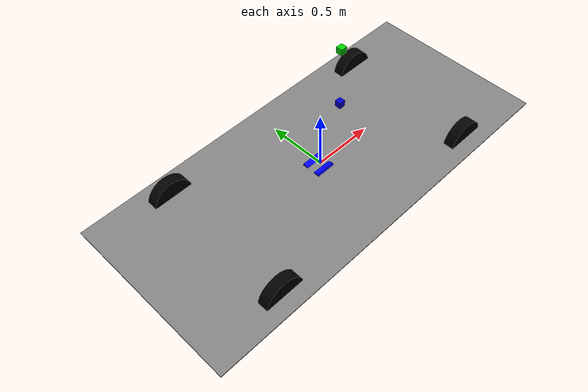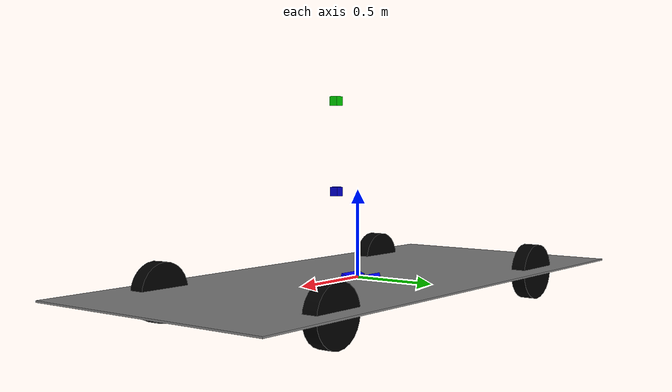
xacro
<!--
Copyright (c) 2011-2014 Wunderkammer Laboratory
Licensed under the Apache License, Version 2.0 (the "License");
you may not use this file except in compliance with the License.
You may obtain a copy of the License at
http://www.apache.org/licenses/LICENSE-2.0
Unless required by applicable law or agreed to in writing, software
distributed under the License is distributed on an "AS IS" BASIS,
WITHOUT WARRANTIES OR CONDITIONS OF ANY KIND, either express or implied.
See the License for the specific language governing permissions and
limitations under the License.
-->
<?xml version="1.0"?>

<!-- MADE CHANGES IN THE DIMENSIONS and MASS
WHEEL MASS IS CORRECT, REST IS NOT -->
<!-- Also added a camera, imu and broke the materials to a different file -->

<robot name="em_3905" xmlns:xacro="http://www.ros.org/wiki/xacro">

  <xacro:include filename="$(find ackermann_vehicle_description)/urdf/colors.xacro" />
  <xacro:include filename="$(find ackermann_vehicle_description)/urdf/sensors.gazebo" />

  <xacro:property name="cameraSize" value="0.05"/>
  <xacro:property name="cameraMass" value="0.1"/>
  <!-- Degree-to-radian conversions -->

  <xacro:property name="degrees_45" value="0.785398163"/>
  <xacro:property name="degrees_90" value="1.57079633"/>

  <!-- chassis_length is measured along the x axis, chassis_width
       along the y axis, and chassis_height along the z axis. -->
  <xacro:property name="chassis_length" value="3.280"/>
  <xacro:property name="chassis_width" value="1.514"/>
  <xacro:property name="chassis_height" value="0.01"/>
  <xacro:property name="chassis_mass" value="2.788"/>

  <xacro:property name="battery_x_offset" value="0.055"/>
  <xacro:property name="battery_dist" value="0.065"/>
  <xacro:property name="battery_comp_depth" value="0.02"/>
  <xacro:property name="battery_comp_angle" value="0.34906585"/>
  <xacro:property name="battery_length" value="0.16"/>
  <xacro:property name="battery_width" value="0.047"/>
  <xacro:property name="battery_height" value="0.024"/>
  <xacro:property name="battery_mass" value="0.5025"/>

  <xacro:property name="hub_dia" value="0.09652"/>
  <xacro:property name="tire_dia" value="0.3305"/>
  <xacro:property name="tire_width" value="0.0889"/>
  <xacro:property name="hex_hub_depth" value="0.01445"/>
  <xacro:property name="wheel_mass" value="8.00"/>

  <xacro:property name="wheelbase" value="1.958"/>
  <xacro:property name="hex_hub_dist" value="1.2365"/>
  <xacro:property name="axle_length" value="0.03"/>
  <xacro:property name="wheel_travel" value="0.084"/>
  <xacro:property name="shock_z_offset" value="0.0655"/>

  <xacro:property name="shock_eff_limit" value="12.5106"/>
  <xacro:property name="shock_vel_limit" value="1000"/>

  <xacro:property name="axle_eff_limit" value="5.12766"/>
  <xacro:property name="axle_vel_limit" value="244.8696"/>

  <!-- These constants are used to simulate a Traxxas 2056 servo operated at
       6 V. servo_stall_torque is measured in N m. servo_no_load_speed is
       measured in rad/s. -->
  <xacro:property name="servo_stall_torque" value="1.5649"/>
  <xacro:property name="servo_no_load_speed" value="4.5530"/>

  <!-- Null inertial element. This is needed to make the model work with
       Gazebo. -->
  <xacro:macro name="null_inertial">
    <inertial>
      <mass value="0.001"/>
      <inertia ixx="0.001" ixy="0" ixz="0" iyy="0.001" iyz="0" izz="0.001"/>
    </inertial>
  </xacro:macro>

  <!-- Inertia of a solid cuboid. Width is measured along the x axis, depth
       along the y axis, and height along the z axis. -->
  <xacro:macro name="solid_cuboid_inertial"
               params="width depth height mass *origin">
    <inertial>
      <xacro:insert_block name="origin"/>
      <mass value="${mass}"/>
      <inertia ixx="${mass * (depth * depth + height * height) / 12}"
               ixy="0" ixz="0"
               iyy="${mass * (width * width + height * height) / 12}"
               iyz="0"
               izz="${mass * (width * width + depth * depth) / 12}"/>
    </inertial>
  </xacro:macro>

  <xacro:macro name="thick_walled_tube_inertial"
               params="inner_rad outer_rad height mass">
    <inertial>
      <mass value="${mass}"/>
      <inertia ixx="${(1 / 12) * mass * (3 * (inner_rad * inner_rad +
                    outer_rad * outer_rad) + height * height)}"
               ixy="0" ixz="0"
               iyy="${(1 / 12) * mass * (3 * (inner_rad * inner_rad +
                    outer_rad * outer_rad) + height * height)}"
               iyz="0"
               izz="${mass * (inner_rad * inner_rad +
                    outer_rad * outer_rad) / 2}"/>
    </inertial>
  </xacro:macro>

  <!-- Battery -->
  <xacro:macro name="battery" params="prefix reflect">
    <joint name="chassis_to_${prefix}_battery" type="fixed">
      <parent link="chassis"/>
      <child link="${prefix}_battery_offset"/>
      <origin xyz="${battery_x_offset - battery_length / 2}
                   ${reflect * battery_dist / 2}
                   0"
              rpy="${reflect * battery_comp_angle} 0 0"/>
    </joint>

    <link name="${prefix}_battery_offset">
      <xacro:null_inertial/>
    </link>

    <joint name="offset_to_${prefix}_battery" type="fixed">
      <parent link="${prefix}_battery_offset"/>
      <child link="${prefix}_battery"/>
      <origin xyz="0
                   ${reflect * battery_width / 2}
                   ${(battery_height / 2) - battery_comp_depth}"/>
    </joint>

    <link name="${prefix}_battery">
      <visual>
        <geometry>
          <box size="${battery_length} ${battery_width} ${battery_height}"/>
        </geometry>
        <material name="battery_mat"/>
      </visual>

      <collision>
        <geometry>
          <box size="${battery_length} ${battery_width} ${battery_height}"/>
        </geometry>
      </collision>

      <xacro:solid_cuboid_inertial
         width="${battery_length}" depth="${battery_width}"
         height="${battery_height}" mass="${battery_mass}">
        <origin/>
      </xacro:solid_cuboid_inertial>
    </link>

    <gazebo reference="${prefix}_battery">
      <material>Gazebo/Blue</material>
    </gazebo>
  </xacro:macro>

  <!-- Shock absorber -->
  <xacro:macro name="shock"
               params="lr_prefix fr_prefix lr_reflect fr_reflect child">
    <joint name="${lr_prefix}_${fr_prefix}_shock" type="prismatic">
      <parent link="chassis"/>
      <child link="${child}"/>

      <origin xyz="${fr_reflect * wheelbase / 2}
                   ${lr_reflect * ((hex_hub_dist / 2) - axle_length)}
                   ${(wheel_travel / 2) - shock_z_offset}"/>
      <axis xyz="0 0 -1"/>
      <limit lower="${-wheel_travel / 2}" upper="${wheel_travel / 2}"
             effort="${shock_eff_limit}" velocity="${shock_vel_limit}"/>
    </joint>
    <transmission name="${lr_prefix}_${fr_prefix}_shock_trans">
      <type>transmission_interface/SimpleTransmission</type>
      <joint name="${lr_prefix}_${fr_prefix}_shock">
        <hardwareInterface>EffortJointInterface</hardwareInterface>
      </joint>
      <actuator name="${lr_prefix}_${fr_prefix}_shock_act">
        <!-- This hardwareInterface element exists for compatibility
             with ROS Hydro. -->
        <hardwareInterface>EffortJointInterface</hardwareInterface>
        <mechanicalReduction>1</mechanicalReduction>
      </actuator>
    </transmission>
  </xacro:macro>

  <!-- The "wheel" macro defines an axle carrier, axle, and wheel. -->
  <xacro:macro name="wheel" params="lr_prefix fr_prefix lr_reflect">
    <link name="${lr_prefix}_${fr_prefix}_axle_carrier">
      <xacro:null_inertial/>
    </link>

    <!-- The left and right axles have the same axis so that identical
         rotation values cause the wheels to rotate in the same direction. -->
    <joint name="${lr_prefix}_${fr_prefix}_axle" type="continuous">
      <parent link="${lr_prefix}_${fr_prefix}_axle_carrier"/>
      <child link="${lr_prefix}_${fr_prefix}_wheel"/>
      <origin rpy="${degrees_90} 0 0"/>
      <axis xyz="0 0 -1"/>
      <limit effort="${axle_eff_limit}" velocity="${axle_vel_limit}"/>
    </joint>
    <transmission name="${lr_prefix}_${fr_prefix}_axle_trans">
      <type>transmission_interface/SimpleTransmission</type>
      <joint name="${lr_prefix}_${fr_prefix}_axle">
        <hardwareInterface>EffortJointInterface</hardwareInterface>
      </joint>
      <actuator name="${lr_prefix}_${fr_prefix}_axle_act">
        <!-- This hardwareInterface element exists for compatibility
             with ROS Hydro. -->
        <hardwareInterface>EffortJointInterface</hardwareInterface>
        <mechanicalReduction>1</mechanicalReduction>
      </actuator>
    </transmission>

    <link name="${lr_prefix}_${fr_prefix}_wheel">
      <visual>
        <origin xyz="0
                     ${lr_reflect * (axle_length - (tire_width /
                     2 - hex_hub_depth))}
                     0"/>
        <geometry>
          <cylinder radius="${tire_dia / 2}" length="${tire_width}"/>
        </geometry>
        <material name="tire_mat"/>
      </visual>

      <collision>
        <origin xyz="0
                     ${lr_reflect * (axle_length - (tire_width /
                     2 - hex_hub_depth))}
                     0"/>
        <geometry>
          <cylinder radius="${tire_dia / 2}" length="${tire_width}"/>
        </geometry>
      </collision>

      <xacro:thick_walled_tube_inertial
          inner_rad="${hub_dia / 2}" outer_rad="${tire_dia / 2}"
          height="${tire_width}" mass="${wheel_mass}"/>
    </link>

    <gazebo reference="${lr_prefix}_${fr_prefix}_wheel">
      <material>Gazebo/Black</material>
    </gazebo>
  </xacro:macro>

  <!-- Front wheel -->
  <xacro:macro name="front_wheel"
               params="lr_prefix fr_prefix lr_reflect fr_reflect">
    <xacro:shock lr_prefix="${lr_prefix}" fr_prefix="${fr_prefix}"
                 lr_reflect="${lr_reflect}" fr_reflect="${fr_reflect}"
                 child="${lr_prefix}_steering_link"/>

    <link name="${lr_prefix}_steering_link">
      <xacro:null_inertial/>
    </link>

    <joint name="${lr_prefix}_steering_joint" type="revolute">
      <parent link="${lr_prefix}_steering_link"/>
      <child link="${lr_prefix}_${fr_prefix}_axle_carrier"/>
      <axis xyz="0 0 1"/>
      <limit lower="${-degrees_45}" upper="${degrees_45}"
             effort="${servo_stall_torque}" velocity="${servo_no_load_speed}"/>
    </joint>
    <transmission name="${lr_prefix}_steering_trans">
      <type>transmission_interface/SimpleTransmission</type>
      <joint name="${lr_prefix}_steering_joint">
        <hardwareInterface>EffortJointInterface</hardwareInterface>
      </joint>
      <actuator name="${lr_prefix}_steering_act">
        <!-- This hardwareInterface element exists for compatibility
             with ROS Hydro. -->
        <hardwareInterface>EffortJointInterface</hardwareInterface>
        <mechanicalReduction>1</mechanicalReduction>
      </actuator>
    </transmission>

    <xacro:wheel lr_prefix="${lr_prefix}" fr_prefix="${fr_prefix}"
                 lr_reflect="${lr_reflect}"/>
  </xacro:macro>

  <!-- Rear wheel -->
  <xacro:macro name="rear_wheel"
               params="lr_prefix fr_prefix lr_reflect fr_reflect">
    <xacro:shock lr_prefix="${lr_prefix}" fr_prefix="${fr_prefix}"
                 lr_reflect="${lr_reflect}" fr_reflect="${fr_reflect}"
                 child="${lr_prefix}_${fr_prefix}_axle_carrier"/>
    <xacro:wheel lr_prefix="${lr_prefix}" fr_prefix="${fr_prefix}"
                 lr_reflect="${lr_reflect}"/>
  </xacro:macro>

  <!-- base_link must have geometry so that its axes can be displayed in
       rviz. -->
  <link name="base_link">
    <visual>
      <geometry>
        <box size="0.01 0.01 0.01"/>
      </geometry>
      <material name="chassis_mat"/>
    </visual>
  </link>
  <gazebo reference="base_link">
    <material>Gazebo/Grey</material>
  </gazebo>

  <!-- Chassis -->
  <link name="chassis">
    <visual>
      <origin xyz="0 0 ${-chassis_height / 2}"/>
      <geometry>
        <box size="${chassis_length} ${chassis_width} ${chassis_height}"/>
      </geometry>
      <material name="chassis_mat"/>
    </visual>

    <collision>
      <origin xyz="0 0 ${-chassis_height / 2}"/>
      <geometry>
        <box size="${chassis_length} ${chassis_width} ${chassis_height}"/>
      </geometry>
    </collision>

    <xacro:solid_cuboid_inertial
        width="${chassis_length}" depth="${chassis_width}"
        height="${chassis_height}" mass="${chassis_mass}">
      <origin xyz="0 0 ${-chassis_height / 2}"/>
    </xacro:solid_cuboid_inertial>
  </link>
  <gazebo reference="chassis">
    <material>Gazebo/Grey</material>
  </gazebo>

  <joint name="base_link_to_chassis" type="fixed">
    <parent link="base_link"/>
    <child link="chassis"/>
  </joint>

  <!-- Batteries -->
  <xacro:battery prefix="left" reflect="1"/>
  <xacro:battery prefix="right" reflect="-1"/>

  <!-- Wheels -->
  <xacro:front_wheel lr_prefix="left" fr_prefix="front"
                     lr_reflect="1" fr_reflect="1"/>
  <xacro:front_wheel lr_prefix="right" fr_prefix="front"
                     lr_reflect="-1" fr_reflect="1"/>
  <xacro:rear_wheel lr_prefix="left" fr_prefix="rear"
                    lr_reflect="1" fr_reflect="-1"/>
  <xacro:rear_wheel lr_prefix="right" fr_prefix="rear"
                    lr_reflect="-1" fr_reflect="-1"/>

  <link name="camera">
    <collision>
      <origin xyz="0 0 0" rpy="0 0 0"/>
      <geometry>
        <box size="${cameraSize} ${cameraSize} ${cameraSize}"/>
      </geometry>
    </collision>

    <visual>
      <origin xyz="0 0 0" rpy="0 0 0"/>
      <geometry>
        <box size="${cameraSize} ${cameraSize} ${cameraSize}"/>
      </geometry>
      <material name="green"/>
    </visual>

    <inertial>
      <mass value="${cameraMass}" />
      <origin xyz="0 0 0" rpy="0 0 0"/>
      <box_inertia m="${cameraMass}" x="${cameraSize}" y="${cameraSize}" z="${cameraSize}" />
      <inertia ixx="1e-6" ixy="0" ixz="0" iyy="1e-6" iyz="0" izz="1e-6" />
    </inertial>
  </link>

  <joint name="camera_joint" type="fixed">
    <axis xyz="0 1 0" />
    <origin xyz=".2 0 1" rpy="0 0 0"/>
    <parent link="chassis"/>
    <child link="camera"/>
  </joint>

  <link name="imu_link">
    <collision>
      <origin xyz="0 0 0" rpy="0 0 0"/>
      <geometry>
        <box size="${cameraSize} ${cameraSize} ${cameraSize}"/>
      </geometry>
    </collision>

    <visual>
      <origin xyz="0 0 0" rpy="0 0 0"/>
      <geometry>
        <box size="${cameraSize} ${cameraSize} ${cameraSize}"/>
      </geometry>
      <material name="blue"/>
    </visual>

    <inertial>
      <mass value="${cameraMass}" />
      <origin xyz="0 0 0" rpy="0 0 0"/>
      <box_inertia m="${cameraMass}" x="${cameraSize}" y="${cameraSize}" z="${cameraSize}" />
      <inertia ixx="1e-6" ixy="0" ixz="0" iyy="1e-6" iyz="0" izz="1e-6" />
    </inertial>
  </link>

  <joint name="imu_joint" type="fixed">
    <axis xyz="0 1 0" />
    <origin xyz=".2 0 0.5" rpy="0 0 0"/>
    <parent link="chassis"/>
    <child link="imu_link"/>
  </joint>

  <gazebo>
    <plugin name="gazebo_ros_control" filename="libgazebo_ros_control.so"/>
  </gazebo>
</robot>

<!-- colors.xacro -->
<robot>
  <material name="blue">
    <color rgba="0.0 0.0 0.8 1.0"/>
  </material>
  <material name="green">
    <color rgba="0.0 0.8 0.0 1.0"/>
  </material>
  <material name="battery_mat">
    <color rgba="0 0 1 1"/>
  </material>
  <material name="chassis_mat">
    <color rgba="0.5 0.5 0.5 1"/>
  </material>
  <material name="tire_mat">
    <color rgba="0 0 0 1"/>
  </material>

</robot>
